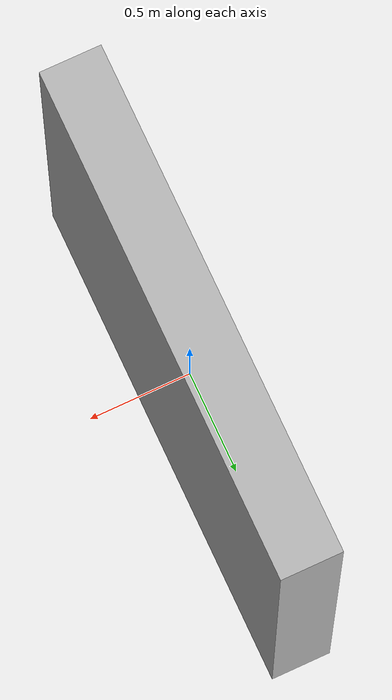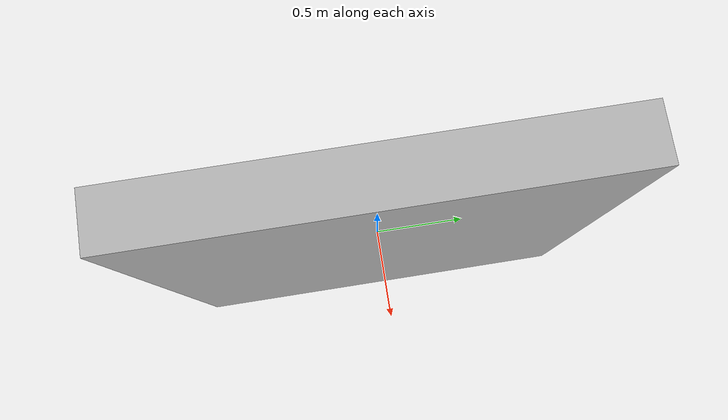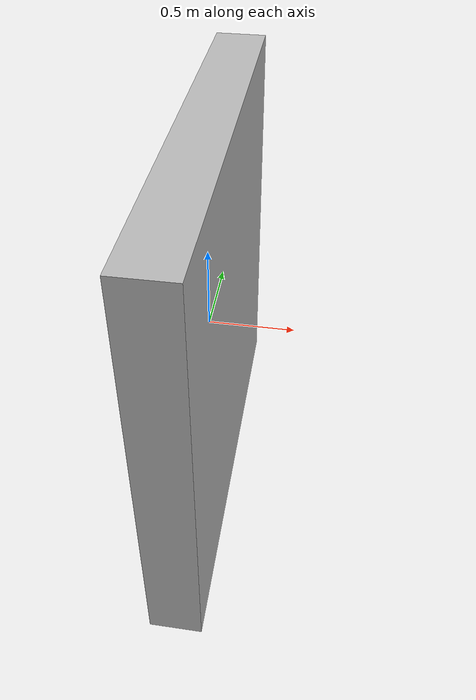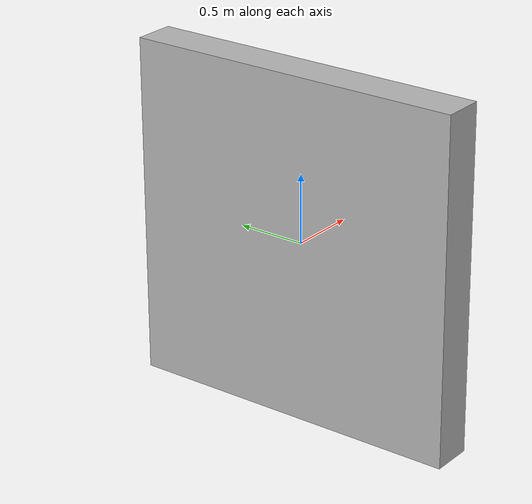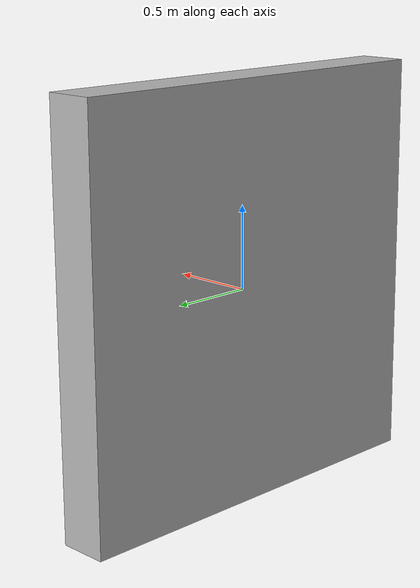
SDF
<?xml version="1.0" ?>
<sdf version="1.5">
  <model name="wall3_thi">
    <static>true</static>
    <link name="link">
      <collision name="collision">
        <geometry>
          <box>
            <size>0.3 2.5 2.5</size>
          </box>
        </geometry>
      </collision>
      <visual name="visual">
        <geometry>
          <box>
            <size>0.3 2.5 2.5</size>
          </box>
        </geometry>
      </visual>
    </link>
  </model>
</sdf>
